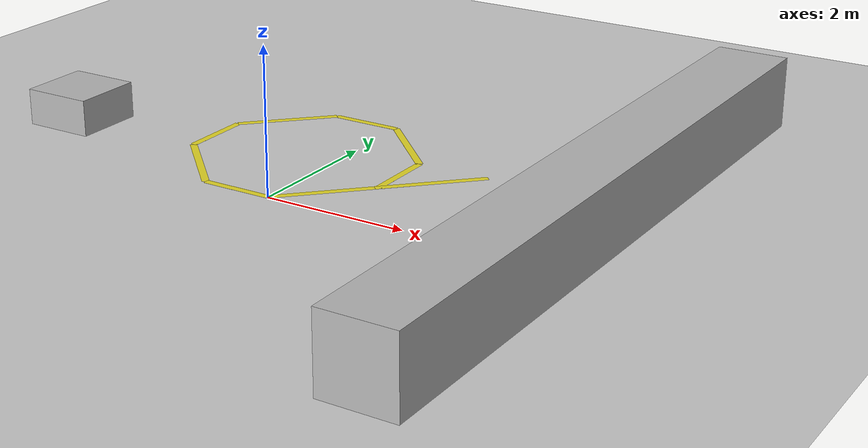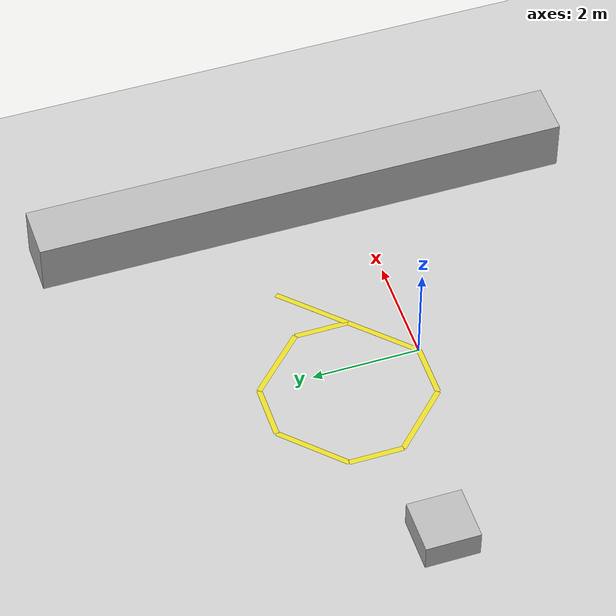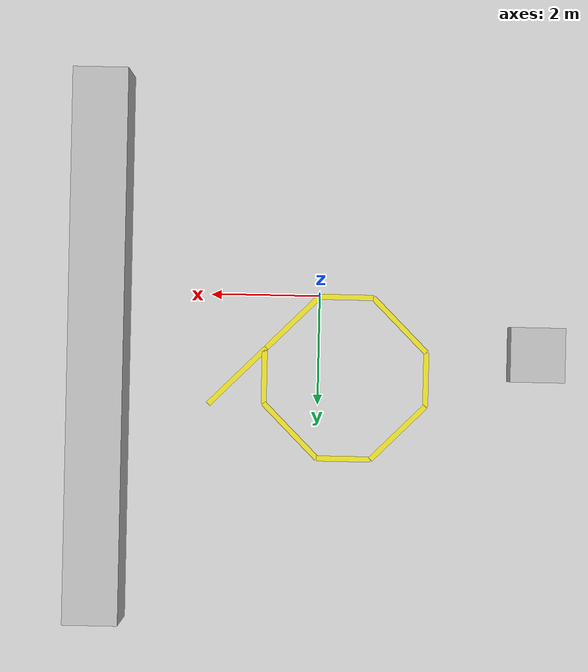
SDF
<sdf version="1.4">
 <world name="default">
  <include><uri>model://ground_plane</uri></include>
  <include><uri>model://sun</uri></include>
  <model name="box">
   <pose>-4 1 0 0 0 0</pose>
   <link name="link">
    <collision name="collision"><geometry><box><size>1 1 1</size></box></geometry></collision>
    <visual name="visual"><geometry><box><size>1 1 1</size></box></geometry></visual>
   </link>
  </model>
  <model name="longBox">
   <pose>4 1 0.5 0 0 0</pose>
   <link name="link">
    <collision name="collision"><geometry><box><size>1 10 1</size></box></geometry></collision>
    <visual name="visual"><geometry><box><size>1 10 1</size></box></geometry></visual>
   </link>
  </model>
  <model name="yellow line_1">
   <static>1</static>
   <link name="link_ground">
    <collision name="collision">
     <geometry><plane><normal>0 0 1</normal><size>1.41421 0.1</size></plane></geometry>
    </collision>
    <visual name="visual_ground">
     <cast_shadows>0</cast_shadows>
     <geometry><plane><normal>0 0 1</normal><size>1.41421 0.1</size></plane></geometry>
     <material>
      <script><uri>file://media/materials/scripts/gazebo.material</uri><name>Gazebo/Yellow</name></script>
     </material>
    </visual>
   </link>
   <pose>0.5 0.5 0.01 0 -0 0.785398</pose>
  </model>
  <model name="yellow line_2">
   <static>1</static>
   <link name="link_ground">
    <collision name="collision">
     <geometry><plane><normal>0 0 1</normal><size>1 0.1</size></plane></geometry>
    </collision>
    <visual name="visual_ground">
     <cast_shadows>0</cast_shadows>
     <geometry><plane><normal>0 0 1</normal><size>1 0.1</size></plane></geometry>
     <material>
      <script><uri>file://media/materials/scripts/gazebo.material</uri><name>Gazebo/Yellow</name></script>
     </material>
    </visual>
   </link>
   <pose>1 1.5 0.01 0 -0 1.5708</pose>
  </model>
  <model name="yellow line_3">
   <static>1</static>
   <link name="link_ground">
    <collision name="collision">
     <geometry><plane><normal>0 0 1</normal><size>1.41421 0.1</size></plane></geometry>
    </collision>
    <visual name="visual_ground">
     <cast_shadows>0</cast_shadows>
     <geometry><plane><normal>0 0 1</normal><size>1.41421 0.1</size></plane></geometry>
     <material>
      <script><uri>file://media/materials/scripts/gazebo.material</uri><name>Gazebo/Yellow</name></script>
     </material>
    </visual>
   </link>
   <pose>0.5 2.5 0.01 0 -0 2.35619</pose>
  </model>
  <model name="yellow line_4">
   <static>1</static>
   <link name="link_ground">
    <collision name="collision">
     <geometry><plane><normal>0 0 1</normal><size>1 0.1</size></plane></geometry>
    </collision>
    <visual name="visual_ground">
     <cast_shadows>0</cast_shadows>
     <geometry><plane><normal>0 0 1</normal><size>1 0.1</size></plane></geometry>
     <material>
      <script><uri>file://media/materials/scripts/gazebo.material</uri><name>Gazebo/Yellow</name></script>
     </material>
    </visual>
   </link>
   <pose>-0.5 3 0.01 0 -0 3.14159</pose>
  </model>
  <model name="yellow line_5">
   <static>1</static>
   <link name="link_ground">
    <collision name="collision">
     <geometry><plane><normal>0 0 1</normal><size>1.41421 0.1</size></plane></geometry>
    </collision>
    <visual name="visual_ground">
     <cast_shadows>0</cast_shadows>
     <geometry><plane><normal>0 0 1</normal><size>1.41421 0.1</size></plane></geometry>
     <material>
      <script><uri>file://media/materials/scripts/gazebo.material</uri><name>Gazebo/Yellow</name></script>
     </material>
    </visual>
   </link>
   <pose>-1.5 2.5 0.01 0 -0 -2.35619</pose>
  </model>
  <model name="yellow line_6">
   <static>1</static>
   <link name="link_ground">
    <collision name="collision">
     <geometry><plane><normal>0 0 1</normal><size>1 0.1</size></plane></geometry>
    </collision>
    <visual name="visual_ground">
     <cast_shadows>0</cast_shadows>
     <geometry><plane><normal>0 0 1</normal><size>1 0.1</size></plane></geometry>
     <material>
      <script><uri>file://media/materials/scripts/gazebo.material</uri><name>Gazebo/Yellow</name></script>
     </material>
    </visual>
   </link>
   <pose>-2 1.5 0.01 0 -0 -1.5708</pose>
  </model>
  <model name="yellow line_7">
   <static>1</static>
   <link name="link_ground">
    <collision name="collision">
     <geometry><plane><normal>0 0 1</normal><size>1.41421 0.1</size></plane></geometry>
    </collision>
    <visual name="visual_ground">
     <cast_shadows>0</cast_shadows>
     <geometry><plane><normal>0 0 1</normal><size>1.41421 0.1</size></plane></geometry>
     <material>
      <script><uri>file://media/materials/scripts/gazebo.material</uri><name>Gazebo/Yellow</name></script>
     </material>
    </visual>
   </link>
   <pose>-1.5 0.5 0.01 0 -0 -0.785398</pose>
  </model>
  <model name="yellow line_8">
   <static>1</static>
   <link name="link_ground">
    <collision name="collision">
     <geometry><plane><normal>0 0 1</normal><size>1 0.1</size></plane></geometry>
    </collision>
    <visual name="visual_ground">
     <cast_shadows>0</cast_shadows>
     <geometry><plane><normal>0 0 1</normal><size>1 0.1</size></plane></geometry>
     <material>
      <script><uri>file://media/materials/scripts/gazebo.material</uri><name>Gazebo/Yellow</name></script>
     </material>
    </visual>
   </link>
   <pose>-0.5 0 0.01 0 -0 0</pose>
  </model>
  <model name="yellow line_9">
   <static>1</static>
   <link name="link_ground">
    <collision name="collision">
     <geometry><plane><normal>0 0 1</normal><size>1.5 0.1</size></plane></geometry>
    </collision>
    <visual name="visual_ground">
     <cast_shadows>0</cast_shadows>
     <geometry><plane><normal>0 0 1</normal><size>1.5 0.1</size></plane></geometry>
     <material>
      <script><uri>file://media/materials/scripts/gazebo.material</uri><name>Gazebo/Yellow</name></script>
     </material>
    </visual>
   </link>
   <pose>1.5 1.5 0.01 0 -0 0.785398</pose>
  </model>
 </world>
</sdf>
